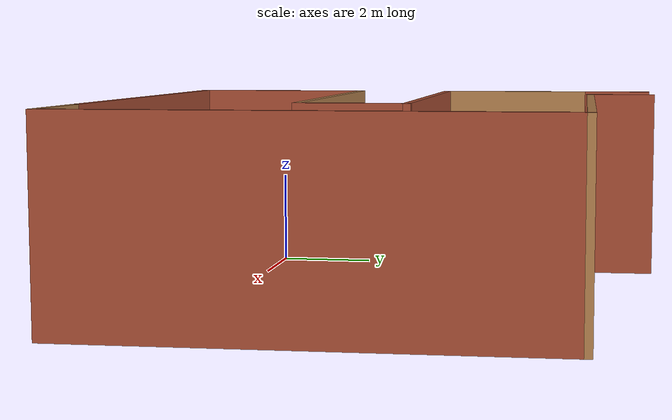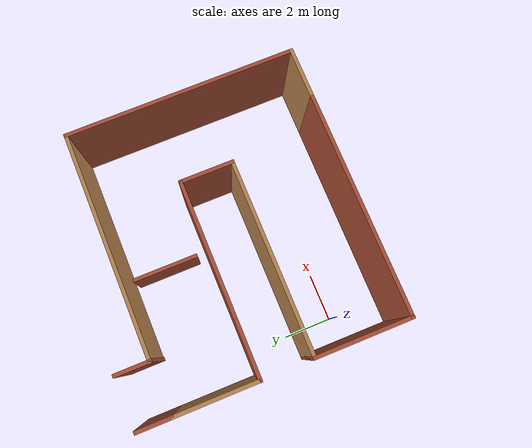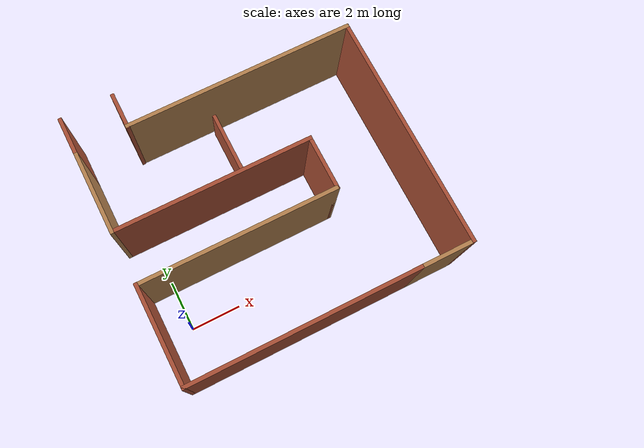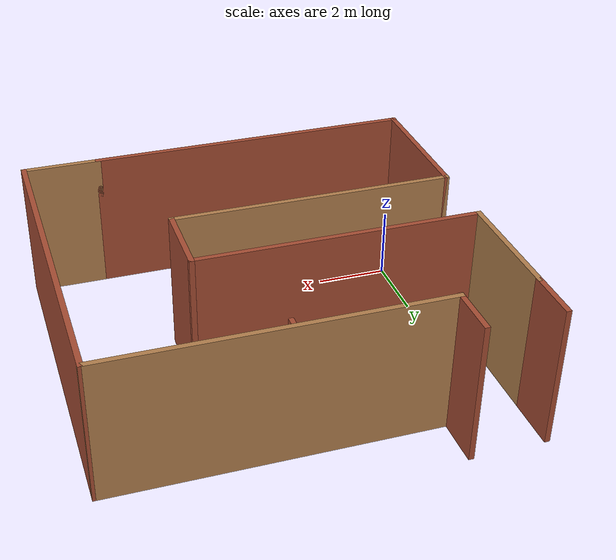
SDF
<?xml version='1.0'?>
<sdf version='1.6'>
  <model name='task15'>
    <pose frame=''>4.58105 3.1593 0 0 -0 0</pose>
    <link name='Wall_0'>
      <collision name='Wall_0_Collision'>
        <geometry>
          <box>
            <size>9.25 0.15 4</size>
          </box>
        </geometry>
        <pose frame=''>0 0 2 0 -0 0</pose>
      </collision>
      <visual name='Wall_0_Visual'>
        <pose frame=''>0 0 2 0 -0 0</pose>
        <geometry>
          <box>
            <size>9.25 0.15 4</size>
          </box>
        </geometry>
        <material>
          <script>
            <uri>file://media/materials/scripts/gazebo.material</uri>
            <name>Gazebo/Bricks</name>
          </script>
          <ambient>1 1 1 1</ambient>
        </material>
        <meta>
          <layer>0</layer>
        </meta>
      </visual>
      <pose frame=''>-1.05005 -5.3383 0 0 -0 0</pose>
    </link>
    <link name='Wall_10'>
      <collision name='Wall_10_Collision'>
        <geometry>
          <box>
            <size>1.5 0.15 4</size>
          </box>
        </geometry>
        <pose frame=''>0 0 2 0 -0 0</pose>
      </collision>
      <visual name='Wall_10_Visual'>
        <pose frame=''>0 0 2 0 -0 0</pose>
        <geometry>
          <box>
            <size>1.5 0.15 4</size>
          </box>
        </geometry>
        <material>
          <script>
            <uri>file://media/materials/scripts/gazebo.material</uri>
            <name>Gazebo/Bricks</name>
          </script>
          <ambient>1 1 1 1</ambient>
        </material>
        <meta>
          <layer>0</layer>
        </meta>
      </visual>
      <pose frame=''>-3.50005 4.6633 0 0 -0 -1.5708</pose>
    </link>
    <link name='Wall_12'>
      <collision name='Wall_12_Collision'>
        <geometry>
          <box>
            <size>2.25 0.15 4</size>
          </box>
        </geometry>
        <pose frame=''>0 0 2 0 -0 0</pose>
      </collision>
      <visual name='Wall_12_Visual'>
        <pose frame=''>0 0 2 0 -0 0</pose>
        <geometry>
          <box>
            <size>2.25 0.15 4</size>
          </box>
        </geometry>
        <material>
          <script>
            <uri>file://media/materials/scripts/gazebo.material</uri>
            <name>Gazebo/Wood</name>
          </script>
          <ambient>1 1 1 1</ambient>
        </material>
        <meta>
          <layer>0</layer>
        </meta>
      </visual>
      <pose frame=''>4.54995 -5.3383 0 0 -0 0</pose>
    </link>
    <link name='Wall_13'>
      <collision name='Wall_13_Collision'>
        <geometry>
          <box>
            <size>9.5 0.15 4</size>
          </box>
        </geometry>
        <pose frame=''>0 0 2 0 -0 0</pose>
      </collision>
      <visual name='Wall_13_Visual'>
        <pose frame=''>0 0 2 0 -0 0</pose>
        <geometry>
          <box>
            <size>9.5 0.15 4</size>
          </box>
        </geometry>
        <material>
          <script>
            <uri>file://media/materials/scripts/gazebo.material</uri>
            <name>Gazebo/Bricks</name>
          </script>
          <ambient>1 1 1 1</ambient>
        </material>
        <meta>
          <layer>0</layer>
        </meta>
      </visual>
      <pose frame=''>5.59995 -0.6633 0 0 -0 1.5708</pose>
    </link>
    <link name='Wall_14'>
      <collision name='Wall_14_Collision'>
        <geometry>
          <box>
            <size>9.25014 0.15 4</size>
          </box>
        </geometry>
        <pose frame=''>0 0 2 0 -0 0</pose>
      </collision>
      <visual name='Wall_14_Visual'>
        <pose frame=''>0 0 2 0 -0 0</pose>
        <geometry>
          <box>
            <size>9.25014 0.15 4</size>
          </box>
        </geometry>
        <material>
          <script>
            <uri>file://media/materials/scripts/gazebo.material</uri>
            <name>Gazebo/Wood</name>
          </script>
          <ambient>1 1 1 1</ambient>
        </material>
        <meta>
          <layer>0</layer>
        </meta>
      </visual>
      <pose frame=''>1.04995 4.0133 0 0 -0 3.14124</pose>
    </link>
    <link name='Wall_16'>
      <collision name='Wall_16_Collision'>
        <geometry>
          <box>
            <size>2.75 0.15 2</size>
          </box>
        </geometry>
        <pose frame=''>0 0 1 0 -0 0</pose>
      </collision>
      <visual name='Wall_16_Visual'>
        <pose frame=''>0 0 1 0 -0 0</pose>
        <geometry>
          <box>
            <size>2.75 0.15 2</size>
          </box>
        </geometry>
        <material>
          <script>
            <uri>file://media/materials/scripts/gazebo.material</uri>
            <name>Gazebo/Bricks</name>
          </script>
          <ambient>1 1 1 1</ambient>
        </material>
        <meta>
          <layer>0</layer>
        </meta>
      </visual>
      <pose frame=''>-0.237047 2.4107 0 0 -0 -1.5708</pose>
    </link>
    <link name='Wall_2'>
      <collision name='Wall_2_Collision'>
        <geometry>
          <box>
            <size>4 0.15 4</size>
          </box>
        </geometry>
        <pose frame=''>0 0 2 0 -0 0</pose>
      </collision>
      <visual name='Wall_2_Visual'>
        <pose frame=''>0 0 2 0 -0 0</pose>
        <geometry>
          <box>
            <size>4 0.15 4</size>
          </box>
        </geometry>
        <material>
          <script>
            <uri>file://media/materials/scripts/gazebo.material</uri>
            <name>Gazebo/Bricks</name>
          </script>
          <ambient>1 1 1 1</ambient>
        </material>
        <meta>
          <layer>0</layer>
        </meta>
      </visual>
      <pose frame=''>-5.60005 -3.4133 0 0 -0 1.5708</pose>
    </link>
    <link name='Wall_4'>
      <collision name='Wall_4_Collision'>
        <geometry>
          <box>
            <size>8 0.15 4</size>
          </box>
        </geometry>
        <pose frame=''>0 0 2 0 -0 0</pose>
      </collision>
      <visual name='Wall_4_Visual'>
        <pose frame=''>0 0 2 0 -0 0</pose>
        <geometry>
          <box>
            <size>8 0.15 4</size>
          </box>
        </geometry>
        <material>
          <script>
            <uri>file://media/materials/scripts/gazebo.material</uri>
            <name>Gazebo/Wood</name>
          </script>
          <ambient>1 1 1 1</ambient>
        </material>
        <meta>
          <layer>0</layer>
        </meta>
      </visual>
      <pose frame=''>-1.67505 -1.4883 0 0 -0 0</pose>
    </link>
    <link name='Wall_5'>
      <collision name='Wall_5_Collision'>
        <geometry>
          <box>
            <size>2.25 0.15 4</size>
          </box>
        </geometry>
        <pose frame=''>0 0 2 0 -0 0</pose>
      </collision>
      <visual name='Wall_5_Visual'>
        <pose frame=''>0 0 2 0 -0 0</pose>
        <geometry>
          <box>
            <size>2.25 0.15 4</size>
          </box>
        </geometry>
        <material>
          <script>
            <uri>file://media/materials/scripts/gazebo.material</uri>
            <name>Gazebo/Bricks</name>
          </script>
          <ambient>1 1 1 1</ambient>
        </material>
        <meta>
          <layer>0</layer>
        </meta>
      </visual>
      <pose frame=''>2.24995 -0.4383 0 0 -0 1.5708</pose>
    </link>
    <link name='Wall_6'>
      <collision name='Wall_6_Collision'>
        <geometry>
          <box>
            <size>8 0.15 4</size>
          </box>
        </geometry>
        <pose frame=''>0 0 2 0 -0 0</pose>
      </collision>
      <visual name='Wall_6_Visual'>
        <pose frame=''>0 0 2 0 -0 0</pose>
        <geometry>
          <box>
            <size>8 0.15 4</size>
          </box>
        </geometry>
        <material>
          <script>
            <uri>file://media/materials/scripts/gazebo.material</uri>
            <name>Gazebo/Bricks</name>
          </script>
          <ambient>1 1 1 1</ambient>
        </material>
        <meta>
          <layer>0</layer>
        </meta>
      </visual>
      <pose frame=''>-1.67505 0.6117 0 0 -0 3.14159</pose>
    </link>
    <link name='Wall_7'>
      <collision name='Wall_7_Collision'>
        <geometry>
          <box>
            <size>3.5 0.15 4</size>
          </box>
        </geometry>
        <pose frame=''>0 0 2 0 -0 0</pose>
      </collision>
      <visual name='Wall_7_Visual'>
        <pose frame=''>0 0 2 0 -0 0</pose>
        <geometry>
          <box>
            <size>3.5 0.15 4</size>
          </box>
        </geometry>
        <material>
          <script>
            <uri>file://media/materials/scripts/gazebo.material</uri>
            <name>Gazebo/Wood</name>
          </script>
          <ambient>1 1 1 1</ambient>
        </material>
        <meta>
          <layer>0</layer>
        </meta>
      </visual>
      <pose frame=''>-5.60005 2.2867 0 0 -0 1.5708</pose>
    </link>
    <link name='Wall_8'>
      <collision name='Wall_8_Collision'>
        <geometry>
          <box>
            <size>1.5 0.15 4</size>
          </box>
        </geometry>
        <pose frame=''>0 0 2 0 -0 0</pose>
      </collision>
      <visual name='Wall_8_Visual'>
        <pose frame=''>0 0 2 0 -0 0</pose>
        <geometry>
          <box>
            <size>1.5 0.15 4</size>
          </box>
        </geometry>
        <material>
          <script>
            <uri>file://media/materials/scripts/gazebo.material</uri>
            <name>Gazebo/Bricks</name>
          </script>
          <ambient>1 1 1 1</ambient>
        </material>
        <meta>
          <layer>0</layer>
        </meta>
      </visual>
      <pose frame=''>-5.60005 4.6367 0 0 -0 1.5708</pose>
    </link>
    <static>1</static>
  </model>
</sdf>
